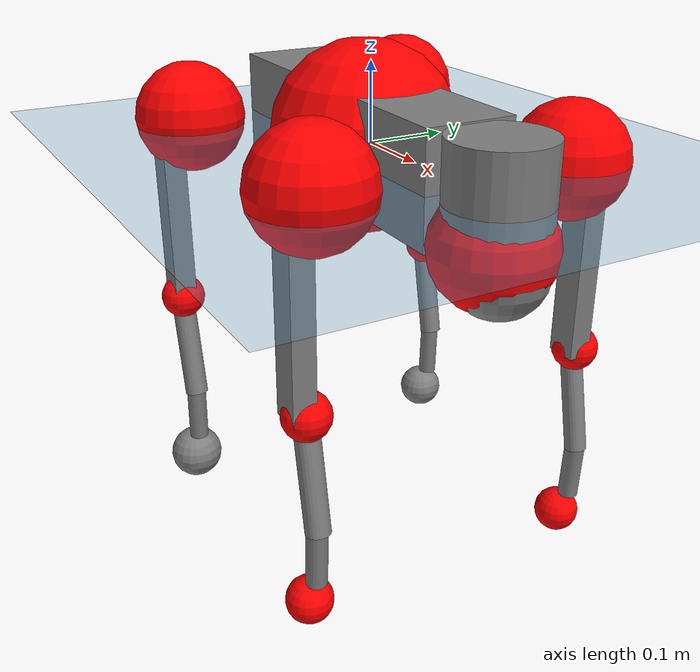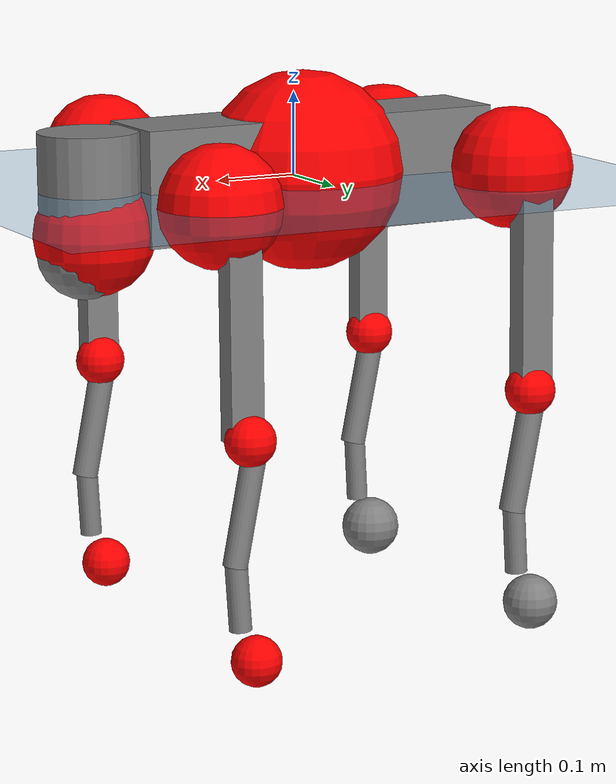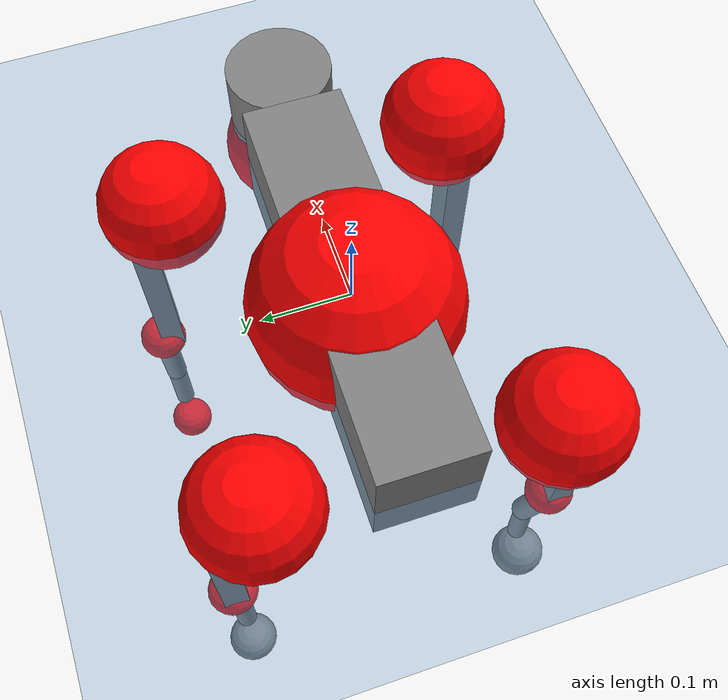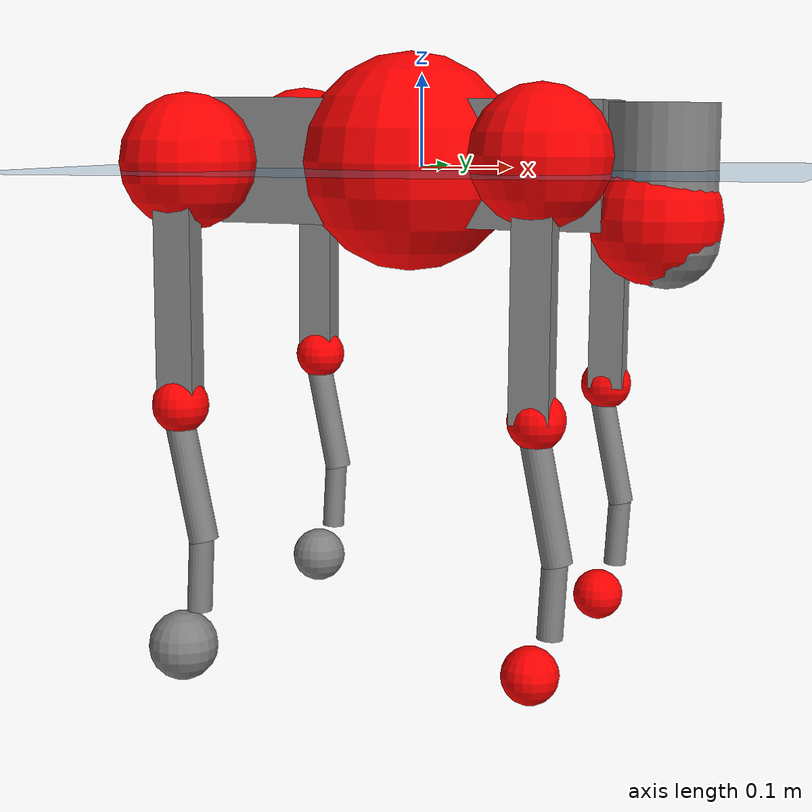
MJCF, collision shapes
<mujoco model="go2">
  <compiler angle="radian" assetdir="assets" balanceinertia="true" inertiafromgeom="false"/>

  <option timestep="0.005" density="1.2" viscosity="2e-05"/>

  <size nkey="1"/>

  <visual>
    <quality shadowsize="8192"/>
    <map shadowclip="0.5"/>
  </visual>

  <default>
    <default class="/">
      <geom contype="0" conaffinity="0" group="1" solref="-1000 -80"/>
      <site size="0.01 0.005 0.005" group="5"/>
      <general forcelimited="true" biastype="affine" gainprm="20" biasprm="0 -20 -0.5"/>
      <default class="go2">
        <joint armature="0.01" damping="0.01" frictionloss="0.2"/>
        <geom condim="1" margin="0.001"/>
        <default class="visual">
          <geom type="mesh" group="2"/>
        </default>
        <default class="collision">
          <geom group="3"/>
          <default class="foot">
            <geom size="0.022 0 0" condim="6" priority="1" friction="0.8 0.02 0.01" solimp="0.015 1 0.022"/>
          </default>
        </default>
        <default class="reward_collision_sphere">
          <geom group="5" rgba="1 0 0 1"/>
        </default>
      </default>
    </default>
  </default>

  <asset>
    <texture type="skybox" colorspace="auto" name="//unnamed_texture_0" builtin="gradient" rgb1="0.95 0.95 0.95" rgb2="0.95 0.95 0.95" width="100" height="600"/>
    <texture type="2d" colorspace="auto" name="texplane" builtin="checker" rgb1="0.345 0.575 0.748" rgb2="0.345 0.575 0.748" markrgb="1 1 1" width="512" height="512"/>
    <material name="MatPlane" class="/" texture="texplane" texuniform="true" texrepeat="2 2" specular="0.9"/>
    <material name="metal" class="/" rgba="0.9 0.95 0.95 1"/>
    <material name="black" class="/" rgba="0 0 0 1"/>
    <material name="white" class="/"/>
    <material name="gray" class="/" rgba="0.671705 0.692426 0.77427 1"/>
    <mesh name="base_0" class="/" file="base_0.obj"/>
    <mesh name="base_1" class="/" file="base_1.obj"/>
    <mesh name="base_2" class="/" file="base_2.obj"/>
    <mesh name="base_3" class="/" file="base_3.obj"/>
    <mesh name="base_4" class="/" file="base_4.obj"/>
    <mesh name="hip_0" class="/" file="hip_0.obj"/>
    <mesh name="hip_1" class="/" file="hip_1.obj"/>
    <mesh name="thigh_0" class="/" file="thigh_0.obj"/>
    <mesh name="thigh_1" class="/" file="thigh_1.obj"/>
    <mesh name="thigh_mirror_0" class="/" file="thigh_mirror_0.obj"/>
    <mesh name="thigh_mirror_1" class="/" file="thigh_mirror_1.obj"/>
    <mesh name="calf_0" class="/" file="calf_0.obj"/>
    <mesh name="calf_1" class="/" file="calf_1.obj"/>
    <mesh name="calf_mirror_0" class="/" file="calf_mirror_0.obj"/>
    <mesh name="calf_mirror_1" class="/" file="calf_mirror_1.obj"/>
    <mesh name="foot" class="/" file="foot.obj"/>
  </asset>

  <worldbody>
    <geom name="floor" class="/" size="100 100 0.125" type="plane" group="0" material="MatPlane"/>
    <light name="toplight_shadow" class="/" pos="0 0 5" dir="0.0990148 0.0990148 -0.990148" type="directional" ambient="0.04 0.04 0.04" diffuse="0.55 0.55 0.55" specular="0.12 0.12 0.12"/>
    <light name="toplight_fill" class="/" pos="0 0 5" dir="0.0990148 0.0990148 -0.990148" type="directional" castshadow="false" ambient="0.04 0.04 0.04" diffuse="0.3 0.3 0.3" specular="0.08 0.08 0.08"/>
    <body name="trunk" childclass="go2" pos="-0.0134825 -0.000365266 0.0058314" quat="0.999982 0.00141411 0.00494113 -0.00312606">
      <inertial pos="0.0332864 -0.00549734 -0.00524546" quat="0.000643421 0.717623 0.00332634 0.696424" mass="12.9901" diaginertia="0.0872018 0.491582 0.0574886"/>
      <joint name="//unnamed_joint_0" type="free" armature="0" damping="0" frictionloss="0"/>
      <geom name="//unnamed_geom_1" class="visual" material="black" mesh="base_0"/>
      <geom name="//unnamed_geom_2" class="visual" material="black" mesh="base_1"/>
      <geom name="//unnamed_geom_3" class="visual" material="black" mesh="base_2"/>
      <geom name="//unnamed_geom_4" class="visual" material="white" mesh="base_3"/>
      <geom name="//unnamed_geom_5" class="visual" material="gray" mesh="base_4"/>
      <geom name="trunk_1" class="collision" size="0.224878 0.0558907 0.0681448" type="box"/>
      <geom name="trunk_2" class="collision" size="0.0597762 0.0537986" pos="0.27692 0 0.0121539" type="cylinder"/>
      <geom name="trunk_3" class="collision" size="0.0561896" pos="0.284694 0 -0.0729234"/>
      <geom name="//unnamed_geom_9" class="reward_collision_sphere" size="0.119552"/>
      <geom name="//unnamed_geom_10" class="reward_collision_sphere" size="0.0717314" pos="0.272062 0 -0.0546926"/>
      <site name="imu" pos="-0.0255708 -0.0337137 -0.0064986" size="0.0119552"/>
      <camera name="track" pos="0 -2.79906 0" quat="0.707107 0.707107 0 0" mode="trackcom"/>
      <camera name="ego_camera" pos="0.303155 0 0.0546926" quat="-0.5 -0.5 0.5 0.5"/>
      <body name="FL_hip" pos="0.189179 0.0682955 -0.00503979" quat="0.999996 0.000300645 0.00279684 0.000295716">
        <inertial pos="-0.00737644 0.0117574 0.000620293" quat="0.496712 0.499196 0.505099 0.498954" mass="1.20854" diaginertia="0.000618146 0.00286274 0.00126733"/>
        <joint name="FL_hip_joint" pos="0 0 0" axis="0.997808 -0.0640396 -0.0166673" stiffness="0.022062" range="-1.307 1.05308" armature="0.0129415" damping="0" frictionloss="0.253125"/>
        <geom name="//unnamed_geom_11" class="visual" material="metal" mesh="hip_0"/>
        <geom name="//unnamed_geom_12" class="visual" material="gray" mesh="hip_1"/>
        <geom name="//unnamed_geom_13" class="collision" size="0.0549941 0.0239105" pos="0 0.111962 0" quat="0.707107 0.707107 0 0" type="cylinder"/>
        <geom name="//unnamed_geom_14" class="reward_collision_sphere" size="0.0717314" pos="0 0.0979671 0"/>
        <body name="FL_thigh" pos="-0.0061264 0.133535 -0.00690368" quat="0.999986 -0.00330297 -0.00119535 -0.00404227">
          <inertial pos="-0.0124451 -0.0233353 -0.0278809" quat="0.828749 0.0849175 -0.0218141 0.55271" mass="2.17481" diaginertia="0.0052978 0.0350305 0.00214263"/>
          <joint name="FL_thigh_joint" pos="0 0 0" axis="-0.00678927 0.99978 -0.0198287" stiffness="0.0688937" range="-1.68091 3.51125" armature="0.0151891" damping="0.0124805" frictionloss="0.288742"/>
          <geom name="//unnamed_geom_15" class="visual" material="metal" mesh="thigh_0"/>
          <geom name="//unnamed_geom_16" class="visual" material="gray" mesh="thigh_1"/>
          <geom name="//unnamed_geom_17" class="collision" size="0.127323 0.0146452 0.0203239" pos="0 0 -0.129439" quat="0.707107 0 0.707107 0" type="box"/>
          <body name="FL_calf" pos="-0.00360154 0.0119777 -0.254537" quat="0.999993 0.00236013 0.00273545 0.001323">
            <inertial pos="0.016344 -0.00226953 -0.180148" quat="0.723227 -0.0131411 -0.00865802 0.690431" mass="0.39908" diaginertia="0.00116455 0.00585622 0.000111509"/>
            <joint name="FL_calf_joint" pos="0 0 0" axis="0.0110201 0.999784 0.0176131" range="-2.4859 -0.826098" armature="0.00847983" damping="0.0614957" frictionloss="0.161693"/>
            <geom name="//unnamed_geom_18" class="visual" material="gray" mesh="calf_0"/>
            <geom name="//unnamed_geom_19" class="visual" material="black" mesh="calf_1"/>
            <geom name="FL_calf0" class="collision" size="0.0143463 0.0717314" pos="0.0077732 0 -0.0729234" quat="0.994493 0 -0.104807 0" type="cylinder"/>
            <geom name="//unnamed_geom_21" class="collision" size="0.0131508 0.0388545" pos="0.019433 0 -0.179878" quat="0.999688 0 0.0249974 0" type="cylinder"/>
            <geom name="//unnamed_geom_22" class="visual" pos="0 0 -0.258878" quat="1 0 0 0" material="black" mesh="foot"/>
            <geom name="FL_foot" class="foot" size="0.0186382" pos="-0.0019433 0 -0.258878"/>
            <geom name="//unnamed_geom_24" class="reward_collision_sphere" size="0.0298881"/>
            <geom name="//unnamed_geom_25" class="reward_collision_sphere" size="0.0298881" pos="-0.0019433 0 -0.258878"/>
            <site name="FL_foot" class="foot" pos="-0.0019433 0 -0.258878" size="0.0119552"/>
          </body>
        </body>
      </body>
      <body name="FR_hip" pos="0.187397 -0.0685177 0.0121608" quat="0.999988 -0.00324847 0.000668294 0.00346447">
        <inertial pos="-0.0116374 0.00846032 -0.00170684" quat="0.46358 0.504974 0.537742 0.490844" mass="1.17248" diaginertia="0.000928701 0.00348475 0.00152124"/>
        <joint name="FR_hip_joint" pos="0 0 0" axis="0.999471 -0.00395245 0.0322946" stiffness="0.0134114" range="-1.12837 1.05867" armature="0.0101185" damping="0.00947794" frictionloss="0.366352"/>
        <geom name="//unnamed_geom_26" class="visual" pos="0 1.60415e-09 6.88054e-08" quat="4.63268e-05 1 0 0" material="metal" mesh="hip_0"/>
        <geom name="//unnamed_geom_27" class="visual" pos="0 2.60052e-09 -1.70182e-07" quat="4.63268e-05 1 0 0" material="gray" mesh="hip_1"/>
        <geom name="//unnamed_geom_28" class="collision" size="0.0549941 0.0239105" pos="0 -0.111962 0" quat="0.707107 0.707107 0 0" type="cylinder"/>
        <geom name="//unnamed_geom_29" class="reward_collision_sphere" size="0.0717314" pos="0 -0.0979671 0"/>
        <body name="FR_thigh" pos="0.000830837 -0.120406 -0.004142" quat="1 0.000122213 -0.0006025 9.95979e-05">
          <inertial pos="-0.0104989 0.0406426 -0.0396384" quat="0.561128 -0.0566091 0.0728338 0.822573" mass="1.91276" diaginertia="0.00553911 0.0353237 0.0021792"/>
          <joint name="FR_thigh_joint" pos="0 0 0" axis="-3.83166e-05 -1 3.93924e-05" stiffness="0.035144" range="-3.47903 1.36979" armature="0.0117017" damping="0.0224052" frictionloss="0.17425"/>
          <geom name="//unnamed_geom_30" class="visual" material="metal" mesh="thigh_mirror_0"/>
          <geom name="//unnamed_geom_31" class="visual" material="gray" mesh="thigh_mirror_1"/>
          <geom name="//unnamed_geom_32" class="collision" size="0.127323 0.0146452 0.0203239" pos="0 0 -0.129439" quat="0.707107 0 0.707107 0" type="box"/>
          <body name="FR_calf" pos="0.00281081 0.00990759 -0.255036" quat="1 1.58195e-05 -0.000217824 -0.000353214">
            <inertial pos="0.0049184 0.00141014 -0.17048" quat="0.67616 -0.0448115 -0.014926 0.73524" mass="0.408762" diaginertia="0.00128237 0.00788343 0.000156924"/>
            <joint name="FR_calf_joint" pos="0 0 0" axis="0.032096 -0.998036 -0.0538032" stiffness="0.0544372" range="0.851193 2.5483" armature="0.0143942" damping="0" frictionloss="0.297538"/>
            <geom name="//unnamed_geom_33" class="visual" material="gray" mesh="calf_mirror_0"/>
            <geom name="//unnamed_geom_34" class="visual" material="black" mesh="calf_mirror_1"/>
            <geom name="FR_calf0" class="collision" size="0.0155418 0.0717314" pos="0.00971651 0 -0.0729234" quat="0.995004 0 -0.0998334 0" type="cylinder"/>
            <geom name="//unnamed_geom_36" class="collision" size="0.0131508 0.0388545" pos="0.019433 0 -0.179878" quat="0.999688 0 0.0249974 0" type="cylinder"/>
            <geom name="//unnamed_geom_37" class="visual" pos="0 0 -0.258878" quat="1 0 0 0" material="black" mesh="foot"/>
            <geom name="FR_foot" class="foot" size="0.0295588" pos="-0.0019433 0 -0.258878"/>
            <geom name="//unnamed_geom_39" class="reward_collision_sphere" size="0.0298881"/>
            <geom name="//unnamed_geom_40" class="reward_collision_sphere" size="0.0298881" pos="-0.0019433 0 -0.258878"/>
            <site name="FR_foot" class="foot" pos="-0.0019433 0 -0.258878" size="0.0119552"/>
          </body>
        </body>
      </body>
      <body name="RL_hip" pos="-0.190215 0.0669305 0.00942784" quat="1 0.000809087 -0.00032504 0.000101876">
        <inertial pos="0.000652543 -0.00981722 0.00905163" quat="0.557914 0.460626 0.501285 0.474626" mass="0.954731" diaginertia="0.000745846 0.00307002 0.00105843"/>
        <joint name="RL_hip_joint" pos="0 0 0" axis="-0.999933 -0.00315273 0.0111568" range="-1.03222 1.19312" armature="0.0175564" damping="0.020926" frictionloss="0.103296"/>
        <geom name="//unnamed_geom_41" class="visual" pos="2.12336e-09 0 4.16227e-07" quat="4.63268e-05 0 1 0" material="metal" mesh="hip_0"/>
        <geom name="//unnamed_geom_42" class="visual" pos="3.44222e-09 0 3.69134e-07" quat="4.63268e-05 0 1 0" material="gray" mesh="hip_1"/>
        <geom name="//unnamed_geom_43" class="collision" size="0.0549941 0.0239105" pos="0 0.111962 0" quat="0.707107 0.707107 0 0" type="cylinder"/>
        <geom name="//unnamed_geom_44" class="reward_collision_sphere" size="0.0717314" pos="0 0.0979671 0"/>
        <body name="RL_thigh" pos="0.00109547 0.144649 -0.0112751" quat="1 -0.00020308 -0.00017913 -0.000199372">
          <inertial pos="-0.00325778 -0.0326536 -0.0410669" quat="0.820551 0.0731802 -0.0247916 0.566327" mass="1.59471" diaginertia="0.00500941 0.0296673 0.00201568"/>
          <joint name="RL_thigh_joint" pos="0 0 0" axis="-0.0036287 0.999303 -0.0371488" range="-0.515045 4.53507" armature="0.00677258" damping="0.0436564" frictionloss="0.239615"/>
          <geom name="//unnamed_geom_45" class="visual" material="metal" mesh="thigh_0"/>
          <geom name="//unnamed_geom_46" class="visual" material="gray" mesh="thigh_1"/>
          <geom name="//unnamed_geom_47" class="collision" size="0.127323 0.0146452 0.0203239" pos="0 0 -0.129439" quat="0.707107 0 0.707107 0" type="box"/>
          <body name="RL_calf" pos="0.00162519 0.00115623 -0.24675" quat="1 -0.000968471 -0.000119302 0.00012364">
            <inertial pos="0.0103148 -0.0139173 -0.171526" quat="0.696906 0.0260715 -0.0146155 0.716539" mass="0.393878" diaginertia="0.0013303 0.00752684 0.000156077"/>
            <joint name="RL_calf_joint" pos="0 0 0" axis="0.00130896 0.999984 -0.00549578" stiffness="0.0679126" range="-2.73508 -0.948433" armature="0.0081559" damping="0.0461829" frictionloss="0.0866415"/>
            <geom name="//unnamed_geom_48" class="visual" material="gray" mesh="calf_0"/>
            <geom name="//unnamed_geom_49" class="visual" material="black" mesh="calf_1"/>
            <geom name="RL_calf0" class="collision" size="0.0155418 0.0717314" pos="0.00971651 0 -0.0729234" quat="0.995004 0 -0.0998334 0" type="cylinder"/>
            <geom name="//unnamed_geom_51" class="collision" size="0.0131508 0.0388545" pos="0.019433 0 -0.179878" quat="0.999688 0 0.0249974 0" type="cylinder"/>
            <geom name="//unnamed_geom_52" class="visual" pos="0 0 -0.258878" quat="1 0 0 0" material="black" mesh="foot"/>
            <geom name="RL_foot" class="foot" size="0.0324974" pos="-0.0019433 0 -0.258878"/>
            <geom name="//unnamed_geom_54" class="reward_collision_sphere" size="0.0298881"/>
            <geom name="//unnamed_geom_55" class="reward_collision_sphere" size="0.0298881" pos="-0.0019433 0 -0.258878"/>
            <site name="RL_foot" class="foot" pos="-0.0019433 0 -0.258878" size="0.0119552"/>
          </body>
        </body>
      </body>
      <body name="RR_hip" pos="-0.192014 -0.0587246 0.00104375" quat="0.999981 0.000765583 -0.00492071 -0.00374212">
        <inertial pos="-0.00759782 -0.0119005 0.0126157" quat="0.504192 0.46034 0.517771 0.515549" mass="1.1792" diaginertia="0.000763995 0.00320545 0.00129087"/>
        <joint name="RR_hip_joint" pos="0 0 0" axis="-0.997812 -0.0653932 0.00969743" range="-1.13143 1.02367" armature="0.015745" damping="0.0157192" frictionloss="0.218828"/>
        <geom name="//unnamed_geom_56" class="visual" pos="-2.10855e-09 1.60415e-09 3.47422e-07" quat="2.14617e-09 4.63268e-05 4.63268e-05 -1" material="metal" mesh="hip_0"/>
        <geom name="//unnamed_geom_57" class="visual" pos="-3.47886e-09 2.60052e-09 5.39316e-07" quat="2.14617e-09 4.63268e-05 4.63268e-05 -1" material="gray" mesh="hip_1"/>
        <geom name="//unnamed_geom_58" class="collision" size="0.0549941 0.0239105" pos="0 -0.111962 0" quat="0.707107 0.707107 0 0" type="cylinder"/>
        <geom name="//unnamed_geom_59" class="reward_collision_sphere" size="0.0717314" pos="0 -0.0979671 0"/>
        <body name="RR_thigh" pos="0.00293337 -0.13208 0.0128479" quat="0.999999 0.00086562 0.000482865 0.000833444">
          <inertial pos="-0.00302197 0.0327267 -0.0391138" quat="0.54595 -0.0212876 0.0831619 0.833408" mass="2.23902" diaginertia="0.00525197 0.0282825 0.00237479"/>
          <joint name="RR_thigh_joint" pos="0 0 0" axis="-0.00797822 -0.999968 0.000197486" range="-4.5243 0.307539" armature="0.0121136" damping="0.00172468" frictionloss="0.218174"/>
          <geom name="//unnamed_geom_60" class="visual" material="metal" mesh="thigh_mirror_0"/>
          <geom name="//unnamed_geom_61" class="visual" material="gray" mesh="thigh_mirror_1"/>
          <geom name="//unnamed_geom_62" class="collision" size="0.127323 0.0146452 0.0203239" pos="0 0 -0.129439" quat="0.707107 0 0.707107 0" type="box"/>
          <body name="RR_calf" pos="-0.000806368 0.00161413 -0.264921" quat="1 -0.000178888 -2.99966e-05 -6.89719e-05">
            <inertial pos="0.0151064 0.000322432 -0.172855" quat="0.708574 -0.0353646 -0.00900283 0.704693" mass="0.404852" diaginertia="0.00119992 0.00786364 0.000121221"/>
            <joint name="RR_calf_joint" pos="0 0 0" axis="-0.0525451 -0.998297 0.0253544" range="0.9254 2.69789" armature="0.0137855" damping="0" frictionloss="0.274459"/>
            <geom name="//unnamed_geom_63" class="visual" material="gray" mesh="calf_mirror_0"/>
            <geom name="//unnamed_geom_64" class="visual" material="black" mesh="calf_mirror_1"/>
            <geom name="RR_calf0" class="collision" size="0.0155418 0.0717314" pos="0.00971651 0 -0.0729234" quat="0.995004 0 -0.0998334 0" type="cylinder"/>
            <geom name="//unnamed_geom_66" class="collision" size="0.0131508 0.0388545" pos="0.019433 0 -0.179878" quat="0.999688 0 0.0249974 0" type="cylinder"/>
            <geom name="//unnamed_geom_67" class="visual" pos="0 0 -0.258878" quat="1 0 0 0" material="black" mesh="foot"/>
            <geom name="RR_foot" class="foot" size="0.036812" pos="-0.0019433 0 -0.258878"/>
            <geom name="//unnamed_geom_69" class="reward_collision_sphere" size="0.0298881"/>
            <geom name="//unnamed_geom_70" class="reward_collision_sphere" size="0.0298881" pos="-0.0019433 0 -0.258878"/>
            <site name="RR_foot" class="foot" pos="-0.0019433 0 -0.258878" size="0.0119552"/>
          </body>
        </body>
      </body>
    </body>
  </worldbody>

  <contact>
    <pair class="/" geom1="floor" geom2="FL_foot" name="//unnamed_contact_0"/>
    <pair class="/" geom1="floor" geom2="FR_foot" name="//unnamed_contact_1"/>
    <pair class="/" geom1="floor" geom2="RL_foot" name="//unnamed_contact_2"/>
    <pair class="/" geom1="floor" geom2="RR_foot" name="//unnamed_contact_3"/>
  </contact>

  <actuator>
    <general name="FL_hip" class="/" joint="FL_hip_joint" forcerange="-27.7046 27.7046" gainprm="19.6926" biasprm="0 -19.6926 -0.724853"/>
    <general name="FL_thigh" class="/" joint="FL_thigh_joint" forcerange="-35.3029 35.3029" gainprm="19.6926" biasprm="0 -19.6926 -0.724853"/>
    <general name="FL_calf" class="/" joint="FL_calf_joint" forcerange="-55.5278 55.5278" gainprm="19.6926" biasprm="0 -19.6926 -0.724853"/>
    <general name="FR_hip" class="/" joint="FR_hip_joint" forcerange="-27.4629 27.4629" gainprm="19.6926" biasprm="0 -19.6926 -0.724853"/>
    <general name="FR_thigh" class="/" joint="FR_thigh_joint" forcerange="-21.4866 21.4866" gainprm="19.6926" biasprm="0 -19.6926 -0.724853"/>
    <general name="FR_calf" class="/" joint="FR_calf_joint" forcerange="-50.0898 50.0898" gainprm="19.6926" biasprm="0 -19.6926 -0.724853"/>
    <general name="RL_hip" class="/" joint="RL_hip_joint" forcerange="-15.0937 15.0937" gainprm="19.6926" biasprm="0 -19.6926 -0.724853"/>
    <general name="RL_thigh" class="/" joint="RL_thigh_joint" forcerange="-34.9169 34.9169" gainprm="19.6926" biasprm="0 -19.6926 -0.724853"/>
    <general name="RL_calf" class="/" joint="RL_calf_joint" forcerange="-79.7112 79.7112" gainprm="19.6926" biasprm="0 -19.6926 -0.724853"/>
    <general name="RR_hip" class="/" joint="RR_hip_joint" forcerange="-37.0909 37.0909" gainprm="19.6926" biasprm="0 -19.6926 -0.724853"/>
    <general name="RR_thigh" class="/" joint="RR_thigh_joint" forcerange="-15.5511 15.5511" gainprm="19.6926" biasprm="0 -19.6926 -0.724853"/>
    <general name="RR_calf" class="/" joint="RR_calf_joint" forcerange="-52.9998 52.9998" gainprm="19.6926" biasprm="0 -19.6926 -0.724853"/>
  </actuator>

  <sensor>
    <gyro site="imu" name="imu_angular_velocity"/>
    <velocimeter site="imu" name="imu_linear_velocity"/>
    <framelinvel objtype="site" objname="FL_foot" name="FL_foot_global_linear_velocity"/>
    <framelinvel objtype="site" objname="FR_foot" name="FR_foot_global_linear_velocity"/>
    <framelinvel objtype="site" objname="RL_foot" name="RL_foot_global_linear_velocity"/>
    <framelinvel objtype="site" objname="RR_foot" name="RR_foot_global_linear_velocity"/>
  </sensor>

  <keyframe>
    <key name="home" qpos="0 0 0.325 1 0 0 0 0.1 0.8 -1.5 -0.1 -0.8 1.5 -0.1 0.8 -1.5 0.1 -0.8 1.5"/>
  </keyframe>
</mujoco>
